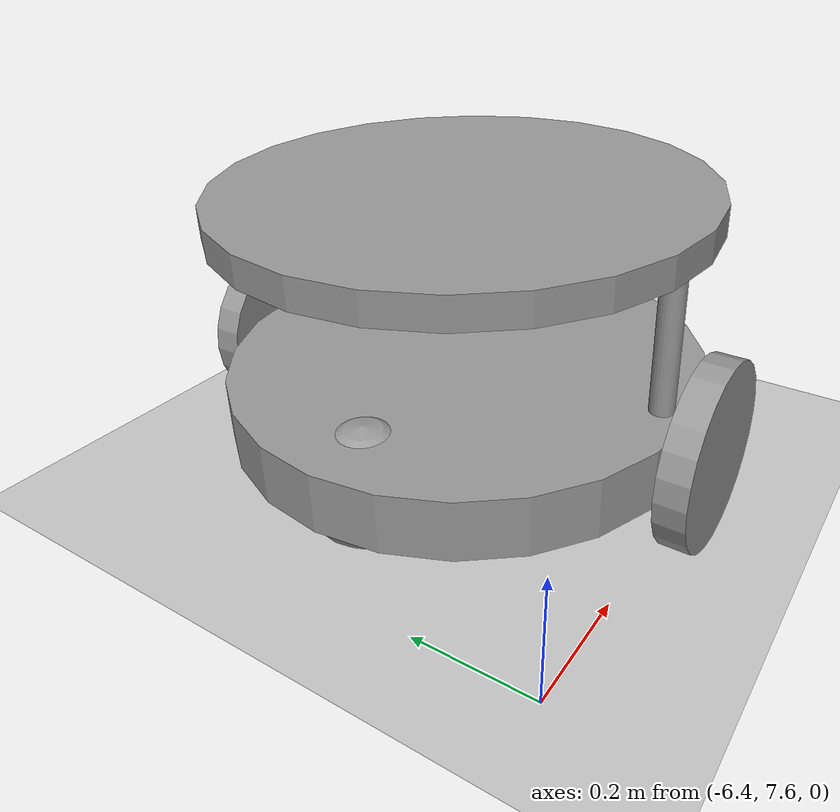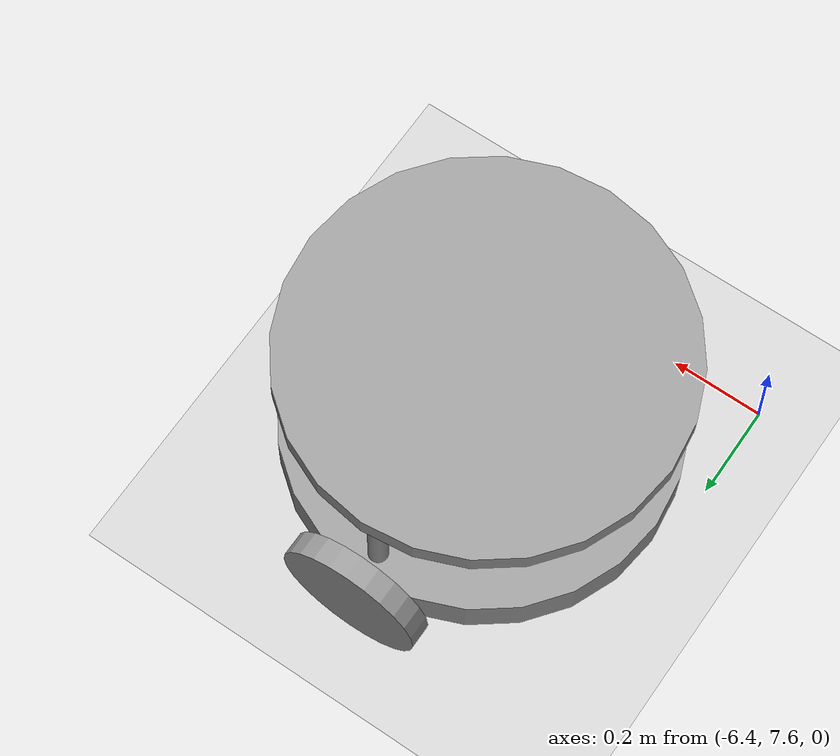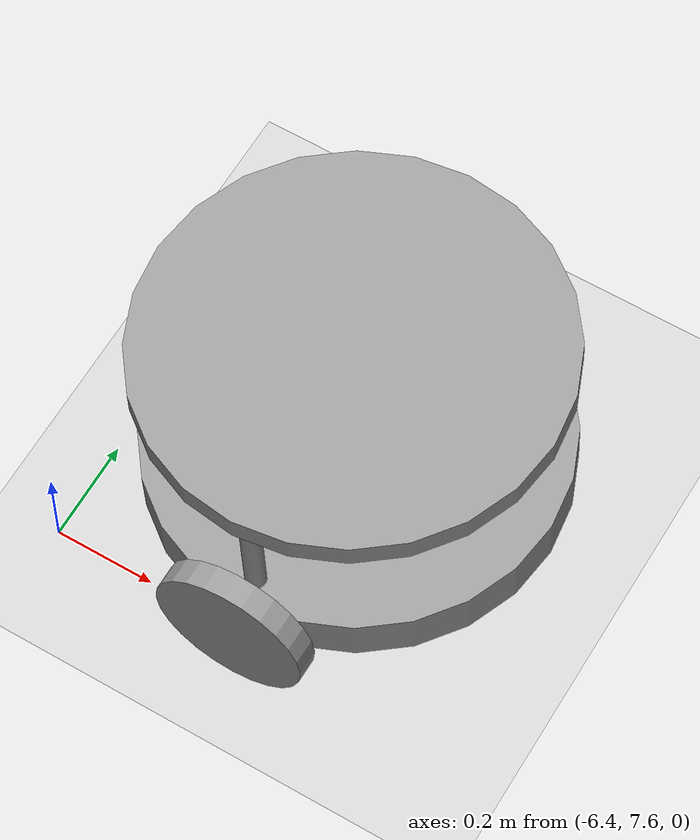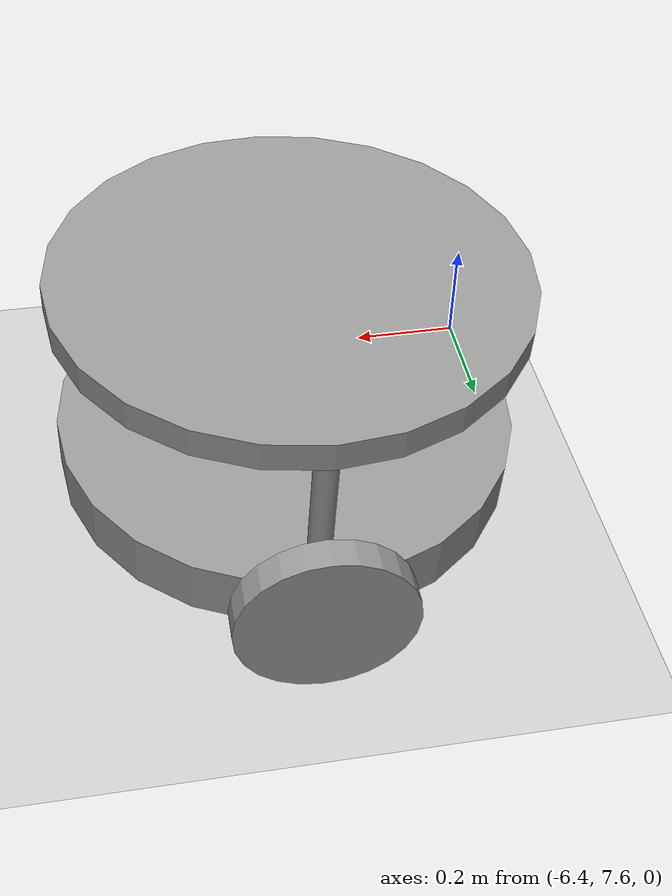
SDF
<sdf version="1.6">
 <world name="default">
  <model name="ground_plane">
   <static>1</static>
   <link name="link">
    <collision name="collision">
     <geometry><plane><normal>0 0 1</normal><size>100 100</size></plane></geometry>
     <surface>
      <contact><collide_bitmask>65535</collide_bitmask></contact>
      <friction><ode><mu>100</mu><mu2>50</mu2></ode></friction>
     </surface>
    </collision>
    <visual name="visual">
     <cast_shadows>0</cast_shadows>
     <geometry><plane><normal>0 0 1</normal><size>100 100</size></plane></geometry>
     <material>
      <script><uri>file://media/materials/scripts/gazebo.material</uri><name>Gazebo/Grey</name></script>
     </material>
    </visual>
   </link>
  </model>
  <model name="robot_0">
   <link name="link_0">
    <inertial>
     <mass>1</mass>
     <inertia><ixx>0.145833</ixx><ixy>0</ixy><ixz>0</ixz><iyy>0.145833</iyy><iyz>0</iyz><izz>0.125</izz></inertia>
    </inertial>
    <pose>0.367061 -0.311434 -0.068144 0 -0 0</pose>
    <visual name="visual">
     <geometry><cylinder><radius>0.4</radius><length>0.1</length></cylinder></geometry>
     <material>
      <lighting>1</lighting>
      <script><uri>file://media/materials/scripts/gazebo.material</uri><name>Gazebo/Grey</name></script>
      <shader type="vertex"><normal_map>__default__</normal_map></shader>
      <ambient>0.3 0.3 0.3 1</ambient>
      <diffuse>0.7 0.7 0.7 1</diffuse>
      <specular>0.01 0.01 0.01 1</specular>
      <emissive>0 0 0 1</emissive>
     </material>
    </visual>
    <collision name="collision">
     <geometry><cylinder><radius>0.4</radius><length>0.1</length></cylinder></geometry>
     <surface>
      <friction>
       <ode><mu>1</mu><mu2>1</mu2><fdir1>0 0 0</fdir1><slip1>0</slip1><slip2>0</slip2></ode>
       <torsional>
        <coefficient>1</coefficient>
        <patch_radius>0</patch_radius>
        <surface_radius>0</surface_radius>
        <use_patch_radius>1</use_patch_radius>
        <ode><slip>0</slip></ode>
       </torsional>
      </friction>
      <bounce><restitution_coefficient>0</restitution_coefficient><threshold>1e+06</threshold></bounce>
      <contact>
       <collide_without_contact>0</collide_without_contact>
       <collide_without_contact_bitmask>1</collide_without_contact_bitmask>
       <collide_bitmask>1</collide_bitmask>
       <ode>
        <soft_cfm>0</soft_cfm>
        <soft_erp>0.2</soft_erp>
        <kp>1e+13</kp>
        <kd>1</kd>
        <max_vel>0.01</max_vel>
        <min_depth>0</min_depth>
       </ode>
       <bullet>
        <split_impulse>1</split_impulse>
        <split_impulse_penetration_threshold>-0.01</split_impulse_penetration_threshold>
        <soft_cfm>0</soft_cfm>
        <soft_erp>0.2</soft_erp>
        <kp>1e+13</kp>
        <kd>1</kd>
       </bullet>
      </contact>
     </surface>
    </collision>
   </link>
   <link name="link_0_clone">
    <inertial>
     <mass>1</mass>
     <inertia><ixx>0.145833</ixx><ixy>0</ixy><ixz>0</ixz><iyy>0.145833</iyy><iyz>0</iyz><izz>0.125</izz></inertia>
    </inertial>
    <pose>0.367061 -0.311434 0.256856 0 -0 0</pose>
    <visual name="visual">
     <geometry><cylinder><radius>0.4</radius><length>0.05</length></cylinder></geometry>
     <material>
      <lighting>1</lighting>
      <script><uri>file://media/materials/scripts/gazebo.material</uri><name>Gazebo/Grey</name></script>
      <shader type="vertex"><normal_map>__default__</normal_map></shader>
      <ambient>0.3 0.3 0.3 1</ambient>
      <diffuse>0.7 0.7 0.7 1</diffuse>
      <specular>0.01 0.01 0.01 1</specular>
      <emissive>0 0 0 1</emissive>
     </material>
    </visual>
    <collision name="collision">
     <geometry><cylinder><radius>0.4</radius><length>0.05</length></cylinder></geometry>
     <surface>
      <friction>
       <ode><mu>1</mu><mu2>1</mu2><fdir1>0 0 0</fdir1><slip1>0</slip1><slip2>0</slip2></ode>
       <torsional>
        <coefficient>1</coefficient>
        <patch_radius>0</patch_radius>
        <surface_radius>0</surface_radius>
        <use_patch_radius>1</use_patch_radius>
        <ode><slip>0</slip></ode>
       </torsional>
      </friction>
      <bounce><restitution_coefficient>0</restitution_coefficient><threshold>1e+06</threshold></bounce>
      <contact>
       <collide_without_contact>0</collide_without_contact>
       <collide_without_contact_bitmask>1</collide_without_contact_bitmask>
       <collide_bitmask>1</collide_bitmask>
       <ode>
        <soft_cfm>0</soft_cfm>
        <soft_erp>0.2</soft_erp>
        <kp>1e+13</kp>
        <kd>1</kd>
        <max_vel>0.01</max_vel>
        <min_depth>0</min_depth>
       </ode>
       <bullet>
        <split_impulse>1</split_impulse>
        <split_impulse_penetration_threshold>-0.01</split_impulse_penetration_threshold>
        <soft_cfm>0</soft_cfm>
        <soft_erp>0.2</soft_erp>
        <kp>1e+13</kp>
        <kd>1</kd>
       </bullet>
      </contact>
     </surface>
    </collision>
   </link>
   <link name="link_1">
    <inertial>
     <mass>1</mass>
     <inertia><ixx>0.145833</ixx><ixy>0</ixy><ixz>0</ixz><iyy>0.145833</iyy><iyz>0</iyz><izz>0.125</izz></inertia>
    </inertial>
    <pose>0.367061 -0.736453 -0.068144 1.5707 -0 0</pose>
    <visual name="visual">
     <geometry><cylinder><radius>0.15</radius><length>0.05</length></cylinder></geometry>
     <material>
      <lighting>1</lighting>
      <script><uri>file://media/materials/scripts/gazebo.material</uri><name>Gazebo/Grey</name></script>
      <shader type="vertex"><normal_map>__default__</normal_map></shader>
      <ambient>0.3 0.3 0.3 1</ambient>
      <diffuse>0.7 0.7 0.7 1</diffuse>
      <specular>0.01 0.01 0.01 1</specular>
      <emissive>0 0 0 1</emissive>
     </material>
    </visual>
    <collision name="collision">
     <geometry><cylinder><radius>0.15</radius><length>0.05</length></cylinder></geometry>
     <surface>
      <friction>
       <ode><mu>1</mu><mu2>1</mu2><fdir1>0 0 0</fdir1><slip1>0</slip1><slip2>0</slip2></ode>
       <torsional>
        <coefficient>1</coefficient>
        <patch_radius>0</patch_radius>
        <surface_radius>0</surface_radius>
        <use_patch_radius>1</use_patch_radius>
        <ode><slip>0</slip></ode>
       </torsional>
      </friction>
      <bounce><restitution_coefficient>0</restitution_coefficient><threshold>1e+06</threshold></bounce>
      <contact>
       <collide_without_contact>0</collide_without_contact>
       <collide_without_contact_bitmask>1</collide_without_contact_bitmask>
       <collide_bitmask>1</collide_bitmask>
       <ode>
        <soft_cfm>0</soft_cfm>
        <soft_erp>0.2</soft_erp>
        <kp>1e+13</kp>
        <kd>1</kd>
        <max_vel>0.01</max_vel>
        <min_depth>0</min_depth>
       </ode>
       <bullet>
        <split_impulse>1</split_impulse>
        <split_impulse_penetration_threshold>-0.01</split_impulse_penetration_threshold>
        <soft_cfm>0</soft_cfm>
        <soft_erp>0.2</soft_erp>
        <kp>1e+13</kp>
        <kd>1</kd>
       </bullet>
      </contact>
     </surface>
    </collision>
   </link>
   <link name="link_1_clone">
    <inertial>
     <mass>1</mass>
     <inertia><ixx>0.145833</ixx><ixy>0</ixy><ixz>0</ixz><iyy>0.145833</iyy><iyz>0</iyz><izz>0.125</izz></inertia>
    </inertial>
    <pose>0.367061 0.113585 -0.068144 1.5707 -0 0</pose>
    <visual name="visual">
     <geometry><cylinder><radius>0.15</radius><length>0.05</length></cylinder></geometry>
     <material>
      <lighting>1</lighting>
      <script><uri>file://media/materials/scripts/gazebo.material</uri><name>Gazebo/Grey</name></script>
      <shader type="vertex"><normal_map>__default__</normal_map></shader>
      <ambient>0.3 0.3 0.3 1</ambient>
      <diffuse>0.7 0.7 0.7 1</diffuse>
      <specular>0.01 0.01 0.01 1</specular>
      <emissive>0 0 0 1</emissive>
     </material>
    </visual>
    <collision name="collision">
     <geometry><cylinder><radius>0.15</radius><length>0.05</length></cylinder></geometry>
     <surface>
      <friction>
       <ode><mu>1</mu><mu2>1</mu2><fdir1>0 0 0</fdir1><slip1>0</slip1><slip2>0</slip2></ode>
       <torsional>
        <coefficient>1</coefficient>
        <patch_radius>0</patch_radius>
        <surface_radius>0</surface_radius>
        <use_patch_radius>1</use_patch_radius>
        <ode><slip>0</slip></ode>
       </torsional>
      </friction>
      <bounce><restitution_coefficient>0</restitution_coefficient><threshold>1e+06</threshold></bounce>
      <contact>
       <collide_without_contact>0</collide_without_contact>
       <collide_without_contact_bitmask>1</collide_without_contact_bitmask>
       <collide_bitmask>1</collide_bitmask>
       <ode>
        <soft_cfm>0</soft_cfm>
        <soft_erp>0.2</soft_erp>
        <kp>1e+13</kp>
        <kd>1</kd>
        <max_vel>0.01</max_vel>
        <min_depth>0</min_depth>
       </ode>
       <bullet>
        <split_impulse>1</split_impulse>
        <split_impulse_penetration_threshold>-0.01</split_impulse_penetration_threshold>
        <soft_cfm>0</soft_cfm>
        <soft_erp>0.2</soft_erp>
        <kp>1e+13</kp>
        <kd>1</kd>
       </bullet>
      </contact>
     </surface>
    </collision>
   </link>
   <link name="link_4_clone">
    <inertial>
     <mass>1</mass>
     <inertia><ixx>0.1</ixx><ixy>0</ixy><ixz>0</ixz><iyy>0.1</iyy><iyz>0</iyz><izz>0.1</izz></inertia>
    </inertial>
    <pose>0.087061 -0.311434 -0.108068 0 -0 0</pose>
    <visual name="visual">
     <geometry><sphere><radius>0.1</radius></sphere></geometry>
     <material>
      <lighting>1</lighting>
      <script><uri>file://media/materials/scripts/gazebo.material</uri><name>Gazebo/Grey</name></script>
      <shader type="vertex"><normal_map>__default__</normal_map></shader>
      <ambient>0.3 0.3 0.3 1</ambient>
      <diffuse>0.7 0.7 0.7 1</diffuse>
      <specular>0.01 0.01 0.01 1</specular>
      <emissive>0 0 0 1</emissive>
     </material>
    </visual>
    <collision name="collision">
     <geometry><sphere><radius>0.1</radius></sphere></geometry>
     <surface>
      <friction>
       <ode><mu>1</mu><mu2>1</mu2><fdir1>0 0 0</fdir1><slip1>0</slip1><slip2>0</slip2></ode>
       <torsional>
        <coefficient>1</coefficient>
        <patch_radius>0</patch_radius>
        <surface_radius>0</surface_radius>
        <use_patch_radius>1</use_patch_radius>
        <ode><slip>0</slip></ode>
       </torsional>
      </friction>
      <bounce><restitution_coefficient>0</restitution_coefficient><threshold>1e+06</threshold></bounce>
      <contact>
       <collide_without_contact>0</collide_without_contact>
       <collide_without_contact_bitmask>1</collide_without_contact_bitmask>
       <collide_bitmask>1</collide_bitmask>
       <ode>
        <soft_cfm>0</soft_cfm>
        <soft_erp>0.2</soft_erp>
        <kp>1e+13</kp>
        <kd>1</kd>
        <max_vel>0.01</max_vel>
        <min_depth>0</min_depth>
       </ode>
       <bullet>
        <split_impulse>1</split_impulse>
        <split_impulse_penetration_threshold>-0.01</split_impulse_penetration_threshold>
        <soft_cfm>0</soft_cfm>
        <soft_erp>0.2</soft_erp>
        <kp>1e+13</kp>
        <kd>1</kd>
       </bullet>
      </contact>
     </surface>
    </collision>
   </link>
   <link name="link_5_clone">
    <inertial>
     <mass>1</mass>
     <inertia><ixx>0.145833</ixx><ixy>0</ixy><ixz>0</ixz><iyy>0.145833</iyy><iyz>0</iyz><izz>0.125</izz></inertia>
    </inertial>
    <pose>0.367061 -0.661434 0.081856 0 -0 0</pose>
    <visual name="visual">
     <geometry><cylinder><radius>0.02</radius><length>0.3</length></cylinder></geometry>
     <material>
      <lighting>1</lighting>
      <script><uri>file://media/materials/scripts/gazebo.material</uri><name>Gazebo/Grey</name></script>
      <shader type="vertex"><normal_map>__default__</normal_map></shader>
      <ambient>0.3 0.3 0.3 1</ambient>
      <diffuse>0.7 0.7 0.7 1</diffuse>
      <specular>0.01 0.01 0.01 1</specular>
      <emissive>0 0 0 1</emissive>
     </material>
    </visual>
    <collision name="collision">
     <geometry><cylinder><radius>0.02</radius><length>0.3</length></cylinder></geometry>
     <surface>
      <friction>
       <ode><mu>1</mu><mu2>1</mu2><fdir1>0 0 0</fdir1><slip1>0</slip1><slip2>0</slip2></ode>
       <torsional>
        <coefficient>1</coefficient>
        <patch_radius>0</patch_radius>
        <surface_radius>0</surface_radius>
        <use_patch_radius>1</use_patch_radius>
        <ode><slip>0</slip></ode>
       </torsional>
      </friction>
      <bounce><restitution_coefficient>0</restitution_coefficient><threshold>1e+06</threshold></bounce>
      <contact>
       <collide_without_contact>0</collide_without_contact>
       <collide_without_contact_bitmask>1</collide_without_contact_bitmask>
       <collide_bitmask>1</collide_bitmask>
       <ode>
        <soft_cfm>0</soft_cfm>
        <soft_erp>0.2</soft_erp>
        <kp>1e+13</kp>
        <kd>1</kd>
        <max_vel>0.01</max_vel>
        <min_depth>0</min_depth>
       </ode>
       <bullet>
        <split_impulse>1</split_impulse>
        <split_impulse_penetration_threshold>-0.01</split_impulse_penetration_threshold>
        <soft_cfm>0</soft_cfm>
        <soft_erp>0.2</soft_erp>
        <kp>1e+13</kp>
        <kd>1</kd>
       </bullet>
      </contact>
     </surface>
    </collision>
   </link>
   <link name="link_5_clone_clone">
    <inertial>
     <mass>1</mass>
     <inertia><ixx>0.145833</ixx><ixy>0</ixy><ixz>0</ixz><iyy>0.145833</iyy><iyz>0</iyz><izz>0.125</izz></inertia>
    </inertial>
    <pose>0.367061 0.038566 0.081856 0 -0 0</pose>
    <visual name="visual">
     <geometry><cylinder><radius>0.02</radius><length>0.3</length></cylinder></geometry>
     <material>
      <lighting>1</lighting>
      <script><uri>file://media/materials/scripts/gazebo.material</uri><name>Gazebo/Grey</name></script>
      <shader type="vertex"><normal_map>__default__</normal_map></shader>
      <ambient>0.3 0.3 0.3 1</ambient>
      <diffuse>0.7 0.7 0.7 1</diffuse>
      <specular>0.01 0.01 0.01 1</specular>
      <emissive>0 0 0 1</emissive>
     </material>
    </visual>
    <collision name="collision">
     <geometry><cylinder><radius>0.02</radius><length>0.3</length></cylinder></geometry>
     <surface>
      <friction>
       <ode><mu>1</mu><mu2>1</mu2><fdir1>0 0 0</fdir1><slip1>0</slip1><slip2>0</slip2></ode>
       <torsional>
        <coefficient>1</coefficient>
        <patch_radius>0</patch_radius>
        <surface_radius>0</surface_radius>
        <use_patch_radius>1</use_patch_radius>
        <ode><slip>0</slip></ode>
       </torsional>
      </friction>
      <bounce><restitution_coefficient>0</restitution_coefficient><threshold>1e+06</threshold></bounce>
      <contact>
       <collide_without_contact>0</collide_without_contact>
       <collide_without_contact_bitmask>1</collide_without_contact_bitmask>
       <collide_bitmask>1</collide_bitmask>
       <ode>
        <soft_cfm>0</soft_cfm>
        <soft_erp>0.2</soft_erp>
        <kp>1e+13</kp>
        <kd>1</kd>
        <max_vel>0.01</max_vel>
        <min_depth>0</min_depth>
       </ode>
       <bullet>
        <split_impulse>1</split_impulse>
        <split_impulse_penetration_threshold>-0.01</split_impulse_penetration_threshold>
        <soft_cfm>0</soft_cfm>
        <soft_erp>0.2</soft_erp>
        <kp>1e+13</kp>
        <kd>1</kd>
       </bullet>
      </contact>
     </surface>
    </collision>
   </link>
   <joint name="link_0_JOINT_0" type="revolute">
    <parent>link_0</parent>
    <child>link_1</child>
    <axis>
     <xyz>0 0 1</xyz>
     <use_parent_model_frame>0</use_parent_model_frame>
     <limit>
      <lower>-1.79769e+308</lower>
      <upper>1.79769e+308</upper>
      <effort>-1</effort>
      <velocity>-1</velocity>
     </limit>
     <dynamics>
      <spring_reference>0</spring_reference>
      <spring_stiffness>0</spring_stiffness>
      <damping>0</damping>
      <friction>0</friction>
     </dynamics>
    </axis>
    <physics>
     <ode><limit><cfm>0</cfm><erp>0.2</erp></limit><suspension><cfm>0</cfm><erp>0.2</erp></suspension></ode>
    </physics>
   </joint>
   <joint name="link_0_JOINT_10" type="fixed">
    <parent>link_0</parent>
    <child>link_5_clone_clone</child>
    <physics>
     <ode><limit><cfm>0</cfm><erp>0.2</erp></limit><suspension><cfm>0</cfm><erp>0.2</erp></suspension></ode>
    </physics>
   </joint>
   <joint name="link_0_JOINT_1" type="revolute">
    <parent>link_0</parent>
    <child>link_1_clone</child>
    <axis>
     <xyz>0 0 1</xyz>
     <use_parent_model_frame>0</use_parent_model_frame>
     <limit>
      <lower>-1.79769e+308</lower>
      <upper>1.79769e+308</upper>
      <effort>-1</effort>
      <velocity>-1</velocity>
     </limit>
     <dynamics>
      <spring_reference>0</spring_reference>
      <spring_stiffness>0</spring_stiffness>
      <damping>0</damping>
      <friction>0</friction>
     </dynamics>
    </axis>
    <physics>
     <ode><limit><cfm>0</cfm><erp>0.2</erp></limit><suspension><cfm>0</cfm><erp>0.2</erp></suspension></ode>
    </physics>
   </joint>
   <joint name="link_0_JOINT_8" type="ball">
    <parent>link_0</parent>
    <child>link_4_clone</child>
    <pose>0 0 -0.1 0 -0 0</pose>
    <physics>
     <ode><limit><cfm>0</cfm><erp>0.2</erp></limit><suspension><cfm>0</cfm><erp>0.2</erp></suspension></ode>
    </physics>
   </joint>
   <joint name="link_0_JOINT_9" type="fixed">
    <parent>link_0</parent>
    <child>link_5_clone</child>
    <physics>
     <ode><limit><cfm>0</cfm><erp>0.2</erp></limit><suspension><cfm>0</cfm><erp>0.2</erp></suspension></ode>
    </physics>
   </joint>
   <joint name="link_5_clone_clone_JOINT_12" type="fixed">
    <parent>link_5_clone_clone</parent>
    <child>link_0_clone</child>
    <physics>
     <ode><limit><cfm>0</cfm><erp>0.2</erp></limit><suspension><cfm>0</cfm><erp>0.2</erp></suspension></ode>
    </physics>
   </joint>
   <static>0</static>
   <pose>-6.35079 8.28881 0.204773 3e-06 -0.036317 -0.003443</pose>
  </model>
 </world>
</sdf>
